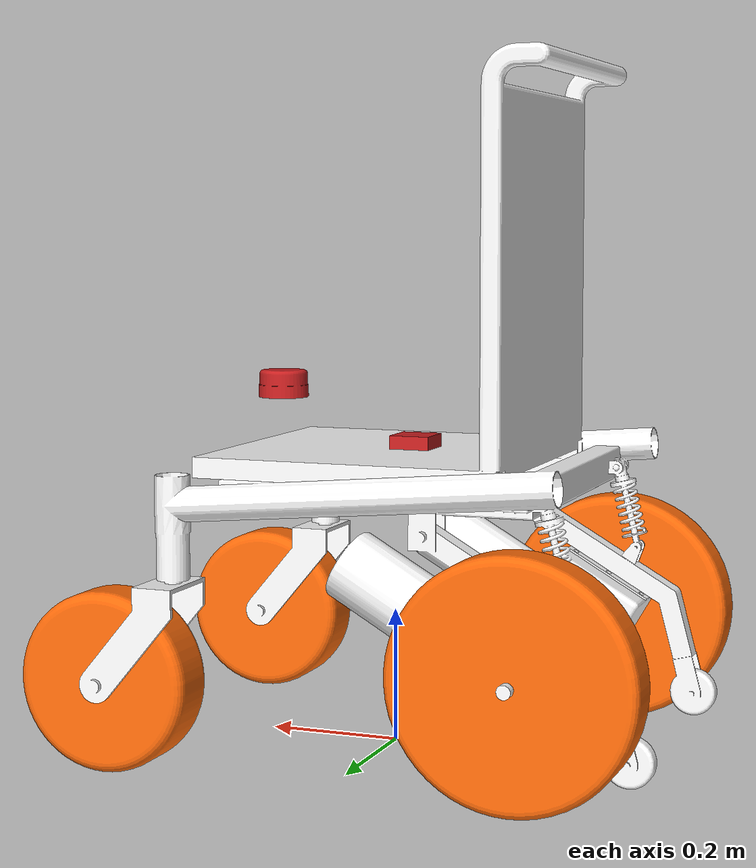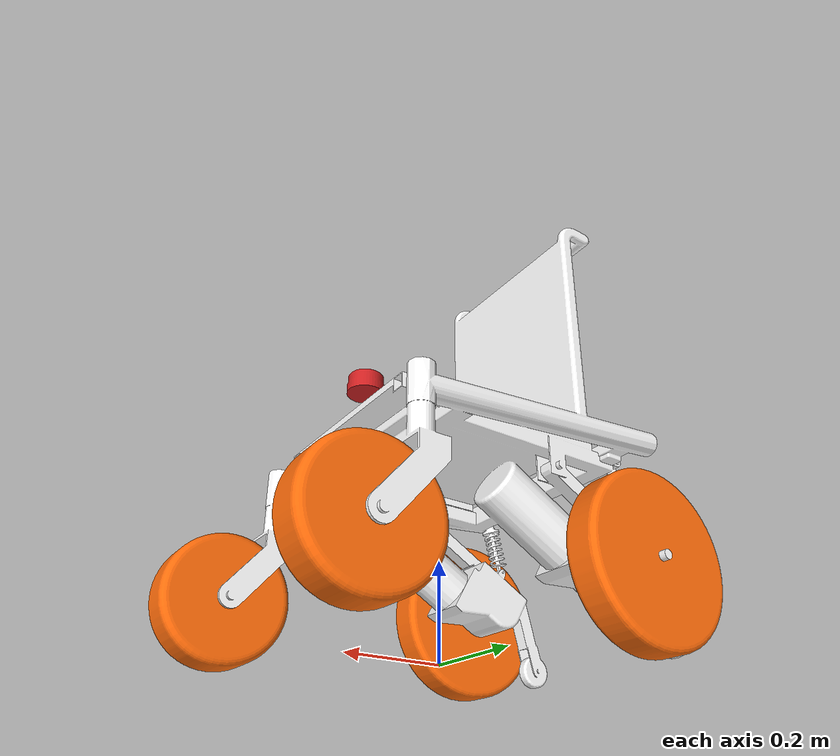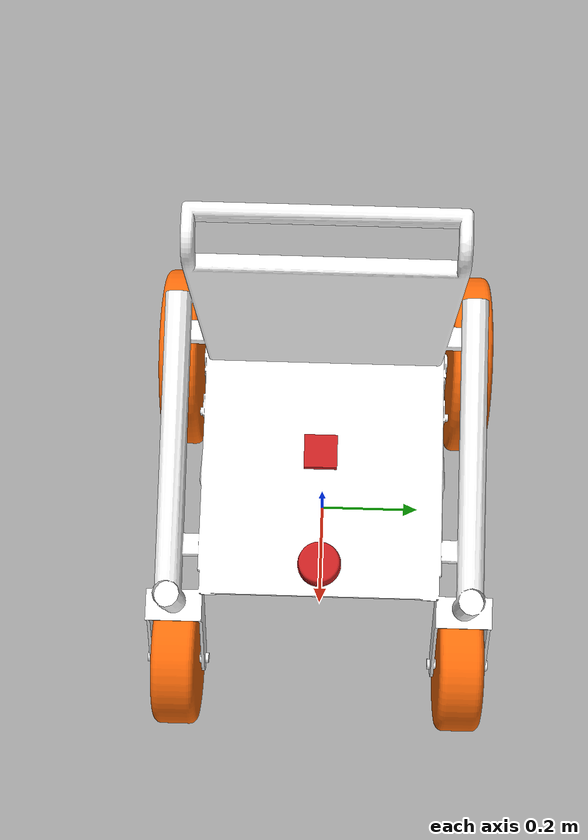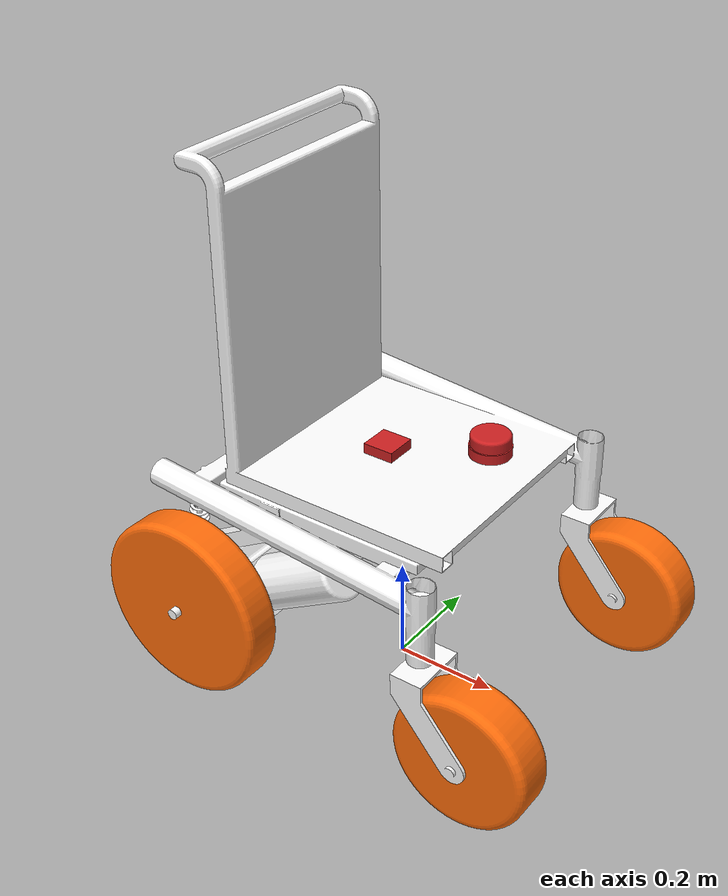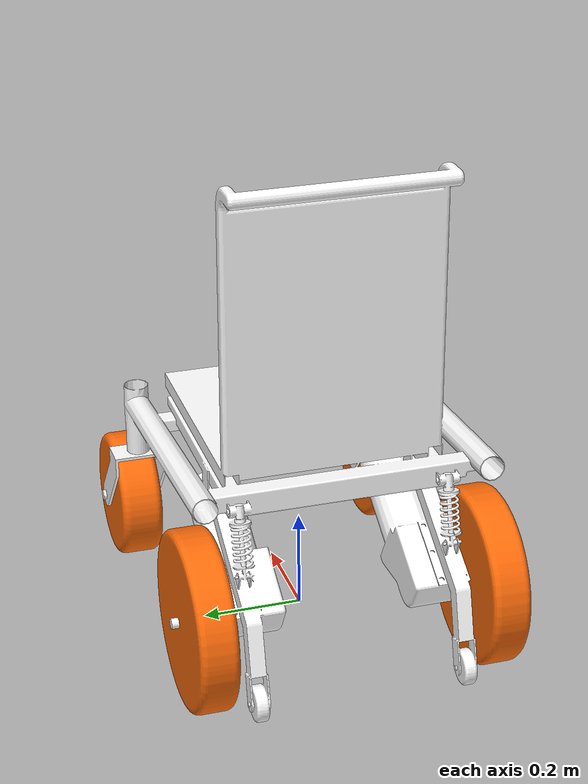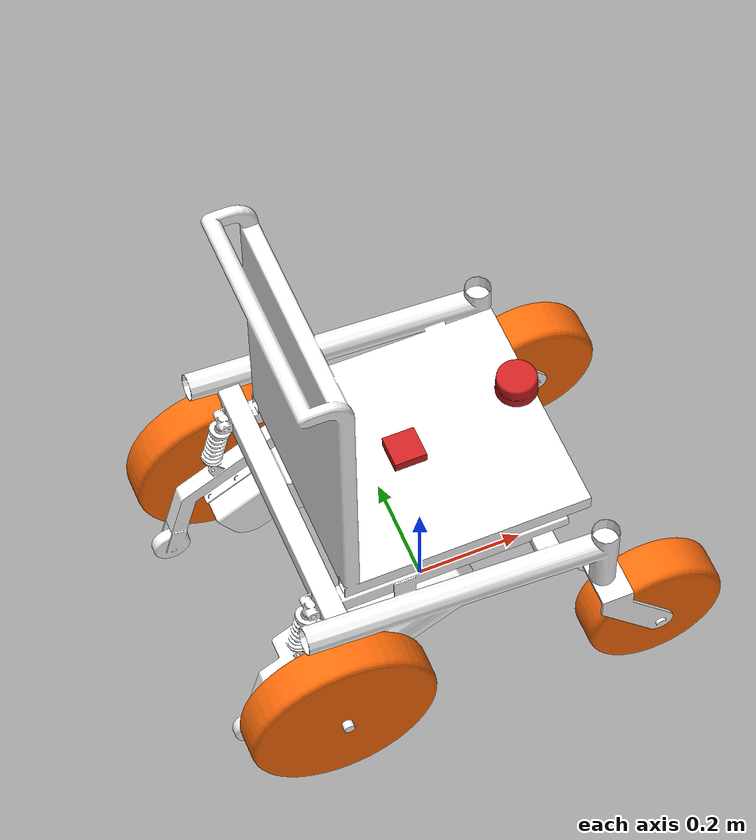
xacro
<?xml version="1.0" encoding="utf-8"?>

<robot name="wheelchair_description" xmlns:xacro="http://www.ros.org/wiki/xacro">

  <xacro:include filename="$(find wheelchair_description)/urdf/wheelchair_materials.xacro"/>

  <link name="base_footprint">
  </link>

  <link
    name="base_link">
    <inertial>
      <origin
        xyz="-0.139983617714034 -9.89516074921259E-05 0.00464176909142665"
        rpy="0 0 0" />
      <mass
        value="21.7163348741133" />
      <inertia
        ixx="0.453004630427319"
        ixy="-3.87622580000471E-06"
        ixz="-0.0193729845601956"
        iyy="0.4196513042714"
        iyz="3.6046494943572E-06"
        izz="0.458473250430987" />
    </inertial>
    <visual>
      <origin
        xyz="0 0 0"
        rpy="0 0 0" />
      <geometry>
        <mesh
          filename="package://wheelchair_description/meshes/base_link.STL" />
      </geometry>
      <material
        name="white"/>
    </visual>
    <collision>
      <origin
        xyz="0 0 0"
        rpy="0 0 0" />
      <geometry>
        <mesh
          filename="package://wheelchair_description/meshes/base_link.STL" />
      </geometry>
    </collision>
  </link>

  <joint
    name="base_joint"
    type="fixed">
    <origin
      xyz="0 0 0.43240025653114"
      rpy="0 0 0" />
    <parent
      link="base_footprint" />
    <child
      link="base_link" />
    <axis
      xyz="0 0 0" />
  </joint>

  <link
    name="caster_left_link">
    <inertial>
      <origin
        xyz="0 -0.0599999999999999 0"
        rpy="0 0 0" />
      <mass
        value="4.40934690008729" />
      <inertia
        ixx="0.0210319896084761"
        ixy="1.24964759959585E-34"
        ixz="-5.70593071526157E-24"
        iyy="0.0368982021708161"
        iyz="2.35816819395541E-19"
        izz="0.0210319896084761" />
    </inertial>
    <visual>
      <origin
        xyz="0 0 0"
        rpy="0 0 0" />
      <geometry>
        <mesh
          filename="package://wheelchair_description/meshes/caster_left_link.STL" />
      </geometry>
      <material
        name="orange"/>
    </visual>
    <collision>
      <origin
        xyz="0 0 0"
        rpy="0 0 0" />
      <geometry>
        <mesh
          filename="package://wheelchair_description/meshes/caster_left_link.STL" />
      </geometry>
    </collision>
  </link>

  <joint
    name="caster_left_joint"
    type="continuous">
    <origin
      xyz="0.32884 0.33655 -0.3024"
      rpy="0 0 0" />
    <parent
      link="base_link" />
    <child
      link="caster_left_link" />
    <axis
      xyz="0 1 0" />
  </joint>

  <link
    name="caster_right_link">
    <inertial>
      <origin
        xyz="0 0.06 0"
        rpy="0 0 0" />
      <mass
        value="4.40934690008729" />
      <inertia
        ixx="0.0210319896084761"
        ixy="6.91510568614259E-36"
        ixz="-8.18747255294568E-24"
        iyy="0.0368982021708161"
        iyz="2.37011509461078E-19"
        izz="0.0210319896084761" />
    </inertial>
    <visual>
      <origin
        xyz="0 0 0"
        rpy="0 0 0" />
      <geometry>
        <mesh
          filename="package://wheelchair_description/meshes/caster_right_link.STL" />
      </geometry>
      <material
        name="orange"/>
    </visual>
    <collision>
      <origin
        xyz="0 0 0"
        rpy="0 0 0" />
      <geometry>
        <mesh
          filename="package://wheelchair_description/meshes/caster_right_link.STL" />
      </geometry>
    </collision>
  </link>

  <joint
    name="caster_right_joint"
    type="continuous">
    <origin
      xyz="0.32884 -0.33655 -0.3024"
      rpy="0 0 0" />
    <parent
      link="base_link" />
    <child
      link="caster_right_link" />
    <axis
      xyz="0 1 0" />
  </joint>

  <link
    name="wheel_left_link">
    <inertial>
      <origin
        xyz="0 -0.0515 0"
        rpy="0 0 0" />
      <mass
        value="7.16080210982417" />
      <inertia
        ixx="0.0580966446914577"
        ixy="4.23516473627149E-19"
        ixz="4.06548409898825E-23"
        iyy="0.109587758725363"
        iyz="-1.07273615672581E-18"
        izz="0.0580966446914578" />
    </inertial>
    <visual>
      <origin
        xyz="0 0 0"
        rpy="0 0 0" />
      <geometry>
        <mesh
          filename="package://wheelchair_description/meshes/wheel_left_link.STL" />
      </geometry>
      <material
        name="orange"/>
    </visual>
    <collision>
      <origin
        xyz="0 0 0"
        rpy="0 0 0" />
      <geometry>
        <mesh
          filename="package://wheelchair_description/meshes/wheel_left_link.STL" />
      </geometry>
    </collision>
  </link>

  <joint
    name="wheel_left_joint"
    type="continuous">
    <origin
      xyz="-0.27524 0.33475 -0.2569"
      rpy="0 0 0" />
    <parent
      link="base_link" />
    <child
      link="wheel_left_link" />
    <axis
      xyz="0 1 0" />
  </joint>

  <link
    name="wheel_right_link">
    <inertial>
      <origin
        xyz="-3.46944695195361E-18 0.0515 0"
        rpy="0 0 0" />
      <mass
        value="7.16080210982418" />
      <inertia
        ixx="0.0580966446914578"
        ixy="2.57023677514845E-19"
        ixz="4.06548409906529E-23"
        iyy="0.109587758725363"
        iyz="-1.07273719070158E-18"
        izz="0.0580966446914578" />
    </inertial>
    <visual>
      <origin
        xyz="0 0 0"
        rpy="0 0 0" />
      <geometry>
        <mesh
          filename="package://wheelchair_description/meshes/wheel_right_link.STL" />
      </geometry>
      <material
        name="orange"/>
    </visual>
    <collision>
      <origin
        xyz="0 0 0"
        rpy="0 0 0" />
      <geometry>
        <mesh
          filename="package://wheelchair_description/meshes/wheel_right_link.STL" />
      </geometry>
    </collision>
  </link>

  <joint
    name="wheel_right_joint"
    type="continuous">
    <origin
      xyz="-0.27524 -0.33525 -0.2569"
      rpy="0 0 0" />
    <parent
      link="base_link" />
    <child
      link="wheel_right_link" />
    <axis
      xyz="0 1 0" />
  </joint>

  <link
    name="base_scan">
    <inertial>
      <origin
        xyz="-5.55111512312578E-17 -2.77555756156289E-17 -0.02097145719459"
        rpy="0 0 0" />
      <mass
        value="0.173952291044052" />
      <inertia
        ixx="8.31356173880308E-05"
        ixy="2.28992257697359E-26"
        ixz="-3.42872385677473E-21"
        iyy="8.31356173880308E-05"
        iyz="1.14659736808138E-21"
        izz="0.000118430701922264" />
    </inertial>
    <visual>
      <origin
        xyz="0 0 0"
        rpy="0 0 0" />
      <geometry>
        <mesh
          filename="package://wheelchair_description/meshes/base_scan.STL" />
      </geometry>
      <material
        name="red"/>
    </visual>
    <collision>
      <origin
        xyz="0 0 0"
        rpy="0 0 0" />
      <geometry>
        <mesh
          filename="package://wheelchair_description/meshes/base_scan.STL" />
      </geometry>
    </collision>
  </link>

  <joint
    name="scan_joint"
    type="fixed">
    <origin
      xyz="0.18225 0 0.1248"
      rpy="0 0 3.14" />
    <parent
      link="base_link" />
    <child
      link="base_scan" />
    <axis
      xyz="0 0 0" />
  </joint>

  <link
    name="imu_link">
    <inertial>
      <origin
        xyz="0 -5.55111512312578E-17 -0.01"
        rpy="0 0 0" />
      <mass
        value="0.072" />
      <inertia
        ixx="2.4E-05"
        ixy="-3.5605380044786E-21"
        ixz="2.82344315751437E-22"
        iyy="2.4E-05"
        iyz="-4.71673120121716E-22"
        izz="4.32E-05" />
    </inertial>
    <visual>
      <origin
        xyz="0 0 0"
        rpy="0 0 0" />
      <geometry>
        <mesh
          filename="package://wheelchair_description/meshes/imu_link.STL" />
      </geometry>
      <material
        name="red" />
    </visual>
    <collision>
      <origin
        xyz="0 0 0"
        rpy="0 0 0" />
      <geometry>
        <mesh
          filename="package://wheelchair_description/meshes/imu_link.STL" />
      </geometry>
    </collision>
  </link>

  <joint
    name="imu_joint"
    type="fixed">
    <origin
      xyz="-0.030704 -0.0035475 0.034002"
      rpy="0 0 0" />
    <parent
      link="base_link" />
    <child
      link="imu_link" />
    <axis
      xyz="0 0 0" />
  </joint>

</robot>

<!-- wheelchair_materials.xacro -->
<robot>
  <material name="black">
    <color rgba="0.0 0.0 0.0 1.0"/>
  </material>
  <material name="blue">
    <color rgba="0.203125 0.23828125 0.28515625 1.0"/>
  </material>
  <material name="green">
    <color rgba="0.0 0.8 0.0 1.0"/>
  </material>
  <material name="grey">
    <color rgba="0.2 0.2 0.2 1.0"/>
  </material>
  <material name="orange">
    <color rgba="1.0 0.423529411765 0.0392156862745 1.0"/>
  </material>
  <material name="brown">
    <color rgba="0.870588235294 0.811764705882 0.764705882353 1.0"/>
  </material>
  <material name="red">
    <color rgba="0.80078125 0.12890625 0.1328125 1.0"/>
  </material>
  <material name="white">
    <color rgba="1.0 1.0 1.0 1.0"/>
  </material>
</robot>
